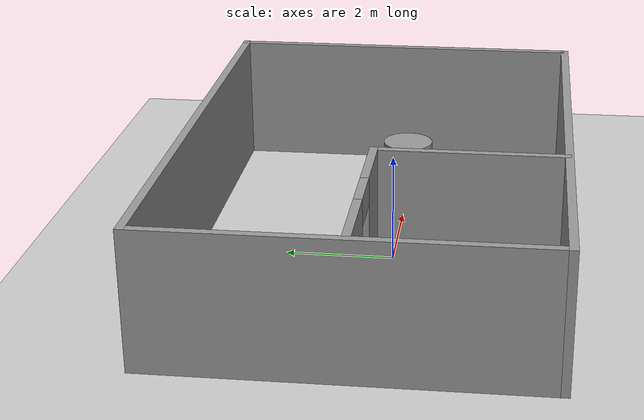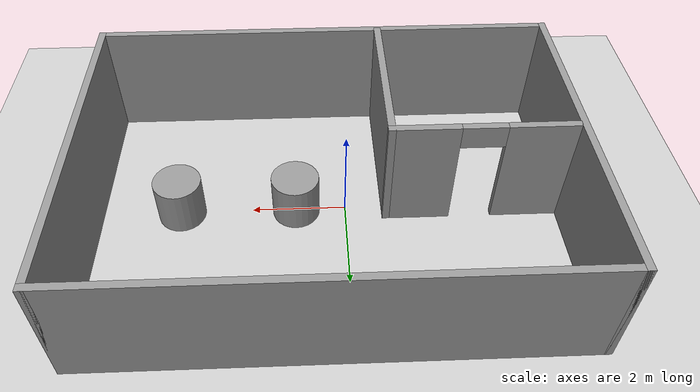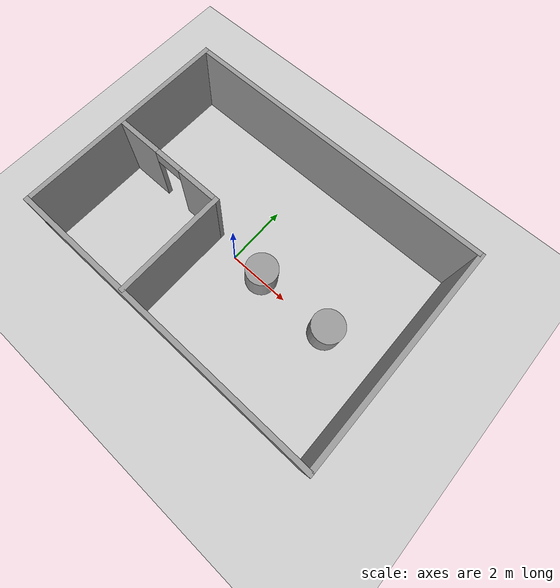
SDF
<sdf version="1.7">
 <world name="default">
  <light name="sun" type="directional">
   <pose>0 0 10 0 -0 0</pose>
   <diffuse>0.8 0.8 0.8 1</diffuse>
   <specular>0.2 0.2 0.2 1</specular>
   <attenuation>
    <range>1000</range>
    <constant>0.9</constant>
    <linear>0.01</linear>
    <quadratic>0.001</quadratic>
   </attenuation>
   <direction>-0.5 0.1 -0.9</direction>
   <spot><inner_angle>0</inner_angle><outer_angle>0</outer_angle><falloff>0</falloff></spot>
  </light>
  <model name="ground_plane">
   <static>1</static>
   <link name="link">
    <collision name="collision">
     <geometry><plane><normal>0 0 1</normal><size>100 100</size></plane></geometry>
     <surface><friction><ode><mu>100</mu><mu2>50</mu2></ode></friction></surface>
    </collision>
    <visual name="visual">
     <cast_shadows>0</cast_shadows>
     <geometry><plane><normal>0 0 1</normal><size>100 100</size></plane></geometry>
     <material>
      <script><uri>file://media/materials/scripts/gazebo.material</uri><name>Gazebo/Grey</name></script>
     </material>
    </visual>
   </link>
  </model>
  <gravity>0 0 -9.8</gravity>
  <magnetic_field>6e-06 2.3e-05 -4.2e-05</magnetic_field>
  <atmosphere type="adiabatic"/>
  <physics type="ode">
   <max_step_size>0.001</max_step_size>
   <real_time_factor>1</real_time_factor>
   <real_time_update_rate>1000</real_time_update_rate>
  </physics>
  <scene><ambient>0.4 0.4 0.4 1</ambient><background>0.7 0.7 0.7 1</background><shadows>1</shadows></scene>
  <audio><device>default</device></audio>
  <spherical_coordinates>
   <surface_model>EARTH_WGS84</surface_model>
   <latitude_deg>0</latitude_deg>
   <longitude_deg>0</longitude_deg>
   <elevation>0</elevation>
   <heading_deg>0</heading_deg>
  </spherical_coordinates>
  <model name="new_world">
   <pose>0.336675 0.298968 0 0 -0 0</pose>
   <link name="Wall_0">
    <collision name="Wall_0_Collision">
     <geometry><box><size>10 0.15 2.5</size></box></geometry>
     <pose>0 0 1.25 0 -0 0</pose>
    </collision>
    <visual name="Wall_0_Visual">
     <pose>0 0 1.25 0 -0 0</pose>
     <geometry><box><size>10 0.15 2.5</size></box></geometry>
     <material>
      <script><uri>file://media/materials/scripts/gazebo.material</uri><name>Gazebo/Grey</name></script>
      <ambient>1 1 1 1</ambient>
     </material>
     <meta><layer>0</layer></meta>
    </visual>
    <pose>0 -3.425 0 0 -0 0</pose>
   </link>
   <link name="Wall_10">
    <pose>-2.98765 -0.035208 0 0 -0 3.14159</pose>
    <visual name="Wall_10_Visual_0">
     <pose>-1.16176 0 1.25 0 -0 0</pose>
     <geometry><box><size>1.42648 0.15 2.5</size></box></geometry>
     <material>
      <script><uri>file://media/materials/scripts/gazebo.material</uri><name>Gazebo/Grey</name></script>
      <ambient>1 1 1 1</ambient>
     </material>
     <meta><layer>0</layer></meta>
    </visual>
    <collision name="Wall_10_Collision_0">
     <geometry><box><size>1.42648 0.15 2.5</size></box></geometry>
     <pose>-1.16176 0 1.25 0 -0 0</pose>
    </collision>
    <visual name="Wall_10_Visual_1">
     <pose>1.16324 0 1.25 0 -0 0</pose>
     <geometry><box><size>1.42352 0.15 2.5</size></box></geometry>
     <material>
      <script><uri>file://media/materials/scripts/gazebo.material</uri><name>Gazebo/Grey</name></script>
      <ambient>1 1 1 1</ambient>
     </material>
     <meta><layer>0</layer></meta>
    </visual>
    <collision name="Wall_10_Collision_1">
     <geometry><box><size>1.42352 0.15 2.5</size></box></geometry>
     <pose>1.16324 0 1.25 0 -0 0</pose>
    </collision>
    <visual name="Wall_10_Visual_2">
     <pose>0.001477 0 2.25 0 -0 0</pose>
     <geometry><box><size>0.9 0.15 0.5</size></box></geometry>
     <material>
      <script><uri>file://media/materials/scripts/gazebo.material</uri><name>Gazebo/Grey</name></script>
      <ambient>1 1 1 1</ambient>
     </material>
     <meta><layer>0</layer></meta>
    </visual>
    <collision name="Wall_10_Collision_2">
     <geometry><box><size>0.9 0.15 0.5</size></box></geometry>
     <pose>0.001477 0 2.25 0 -0 0</pose>
    </collision>
   </link>
   <link name="Wall_5">
    <collision name="Wall_5_Collision">
     <geometry><box><size>7 0.15 2.5</size></box></geometry>
     <pose>0 0 1.25 0 -0 0</pose>
    </collision>
    <visual name="Wall_5_Visual">
     <pose>0 0 1.25 0 -0 0</pose>
     <geometry><box><size>7 0.15 2.5</size></box></geometry>
     <material>
      <script><uri>file://media/materials/scripts/gazebo.material</uri><name>Gazebo/Grey</name></script>
      <ambient>1 1 1 1</ambient>
     </material>
     <meta><layer>0</layer></meta>
    </visual>
    <pose>-4.925 -0 0 0 -0 1.5708</pose>
   </link>
   <link name="Wall_6">
    <collision name="Wall_6_Collision">
     <geometry><box><size>10 0.15 2.5</size></box></geometry>
     <pose>0 0 1.25 0 -0 0</pose>
    </collision>
    <visual name="Wall_6_Visual">
     <pose>0 0 1.25 0 -0 0</pose>
     <geometry><box><size>10 0.15 2.5</size></box></geometry>
     <material>
      <script><uri>file://media/materials/scripts/gazebo.material</uri><name>Gazebo/Grey</name></script>
      <ambient>1 1 1 1</ambient>
     </material>
     <meta><layer>0</layer></meta>
    </visual>
    <pose>0 3.425 0 0 -0 0</pose>
   </link>
   <link name="Wall_7">
    <collision name="Wall_7_Collision">
     <geometry><box><size>7 0.15 2.5</size></box></geometry>
     <pose>0 0 1.25 0 -0 0</pose>
    </collision>
    <visual name="Wall_7_Visual">
     <pose>0 0 1.25 0 -0 0</pose>
     <geometry><box><size>7 0.15 2.5</size></box></geometry>
     <material>
      <script><uri>file://media/materials/scripts/gazebo.material</uri><name>Gazebo/Grey</name></script>
      <ambient>1 1 1 1</ambient>
     </material>
     <meta><layer>0</layer></meta>
    </visual>
    <pose>4.925 -0 0 0 -0 -1.5708</pose>
   </link>
   <link name="Wall_9">
    <collision name="Wall_9_Collision">
     <geometry><box><size>3.5 0.15 2.5</size></box></geometry>
     <pose>0 0 1.25 0 -0 0</pose>
    </collision>
    <visual name="Wall_9_Visual">
     <pose>0 0 1.25 0 -0 0</pose>
     <geometry><box><size>3.5 0.15 2.5</size></box></geometry>
     <material>
      <script><uri>file://media/materials/scripts/gazebo.material</uri><name>Gazebo/Grey</name></script>
      <ambient>1 1 1 1</ambient>
     </material>
     <meta><layer>0</layer></meta>
    </visual>
    <pose>-1.18765 -1.71021 0 0 -0 1.5708</pose>
   </link>
   <static>1</static>
  </model>
  <model name="unit_cylinder">
   <pose>3.50491 0.040756 0.499993 -3e-06 -4e-06 -0</pose>
   <link name="link">
    <inertial>
     <mass>1</mass>
     <inertia><ixx>0.145833</ixx><ixy>0</ixy><ixz>0</ixz><iyy>0.145833</iyy><iyz>0</iyz><izz>0.125</izz></inertia>
    </inertial>
    <collision name="collision">
     <geometry><cylinder><radius>0.5</radius><length>1</length></cylinder></geometry>
    </collision>
    <visual name="visual">
     <geometry><cylinder><radius>0.5</radius><length>1</length></cylinder></geometry>
     <material>
      <script><name>Gazebo/Grey</name><uri>file://media/materials/scripts/gazebo.material</uri></script>
     </material>
    </visual>
   </link>
  </model>
  <model name="unit_cylinder_0">
   <pose>1.05962 0.040753 0.499997 3e-06 4e-06 -0</pose>
   <link name="link">
    <inertial>
     <mass>1</mass>
     <inertia><ixx>0.145833</ixx><ixy>0</ixy><ixz>0</ixz><iyy>0.145833</iyy><iyz>0</iyz><izz>0.125</izz></inertia>
    </inertial>
    <collision name="collision">
     <geometry><cylinder><radius>0.5</radius><length>1</length></cylinder></geometry>
    </collision>
    <visual name="visual">
     <geometry><cylinder><radius>0.5</radius><length>1</length></cylinder></geometry>
     <material>
      <script><name>Gazebo/Grey</name><uri>file://media/materials/scripts/gazebo.material</uri></script>
     </material>
    </visual>
   </link>
  </model>
 </world>
</sdf>
